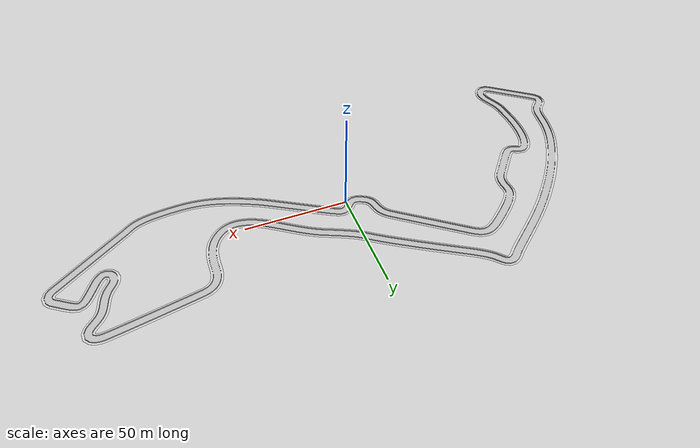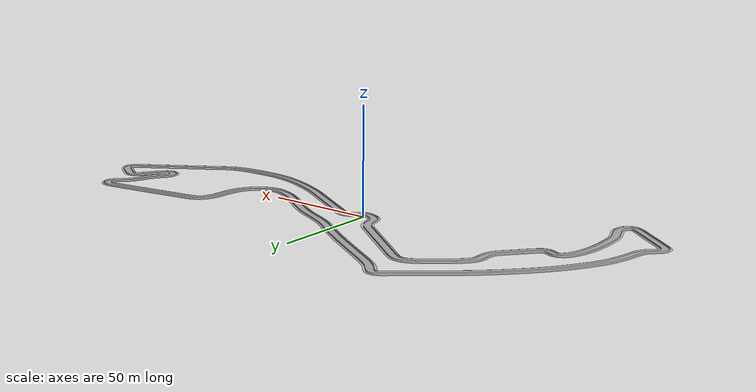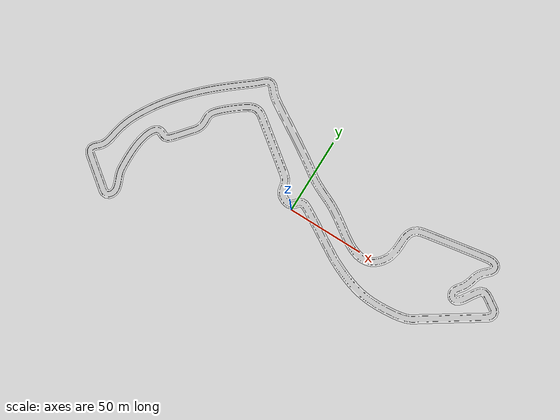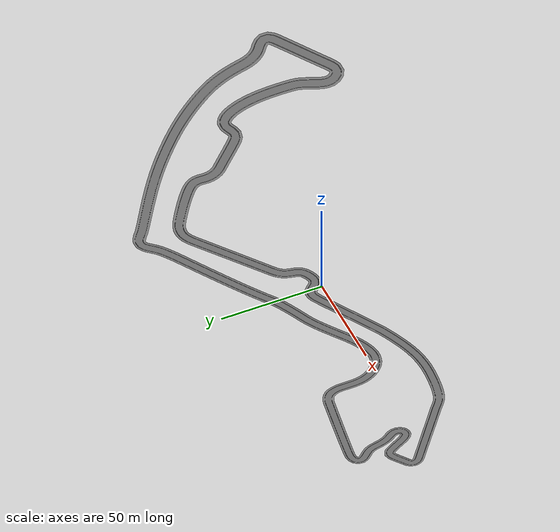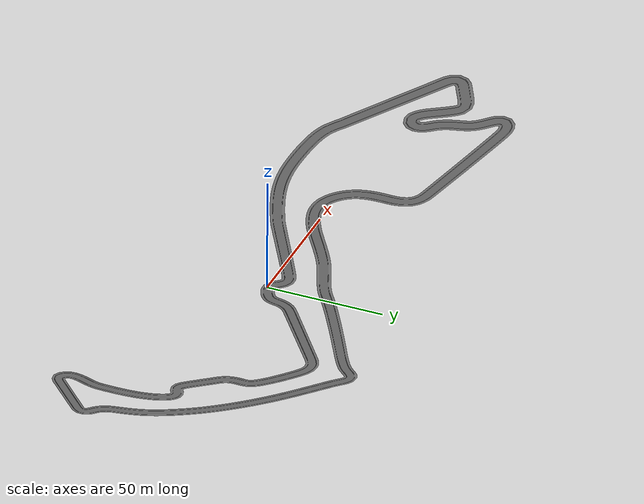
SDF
<?xml version='1.0'?>
<sdf version="1.4">
<model name="monaco">
  <static>true</static>
    <link name="monaco">
    	<pose>0 0 0 0 0 0</pose>
        <collision name="collision">
            <geometry>
               <mesh>
                  <scale>30 30 30</scale>
                  <uri>model://monaco_line/meshes/monaco_line_simple.dae</uri>
               </mesh>
            </geometry>
        </collision>
        <visual name="visual">
            <geometry>
               <mesh>
                  <scale>30 30 30</scale>
                  <uri>model://monaco_line/meshes/monaco_line_simple.dae</uri>
               </mesh>
            </geometry>
        </visual>
     </link>
</model>
</sdf>
